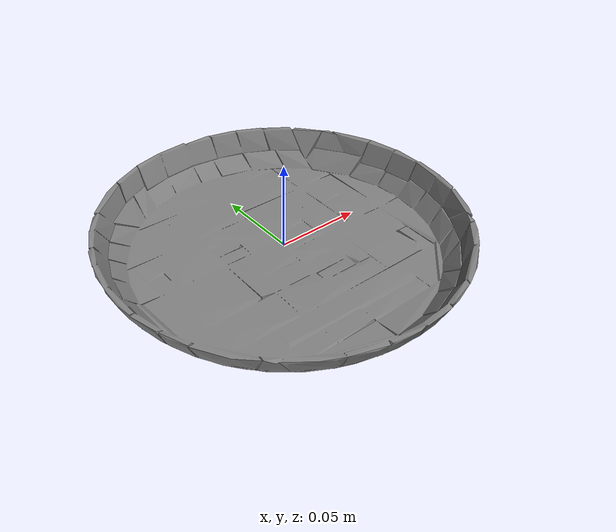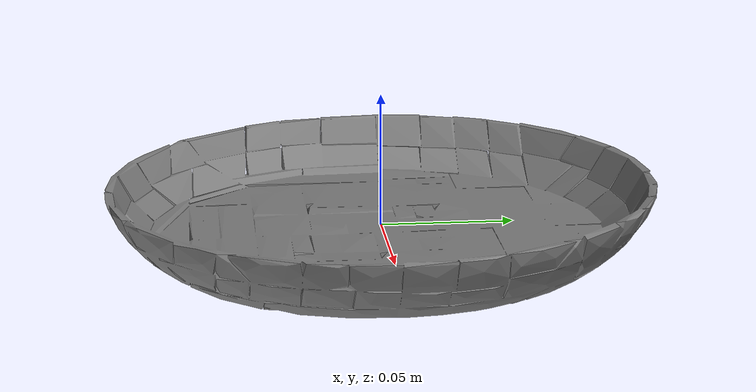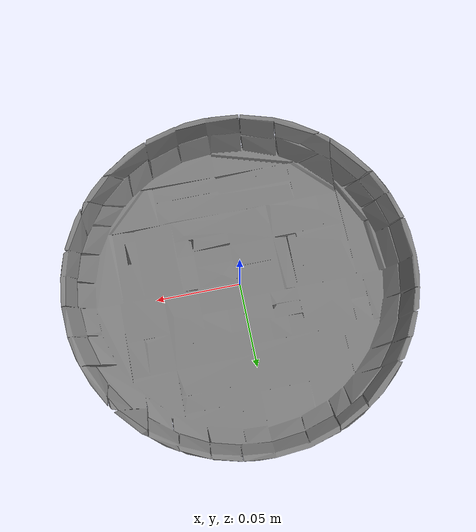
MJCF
<mujoco model="plate_Ecoforms_Plant_Container_S24NATURAL_M">
  <default>
    <default class="visual">
      <geom group="2" type="mesh" contype="0" conaffinity="0" />
    </default>
    <default class="collision">
      <geom group="3" type="mesh" />
    </default>
  </default>
  <asset>
    <mesh file="plate_Ecoforms_Plant_Container_S24NATURAL_M.stl" />
    <mesh file="plate_Ecoforms_Plant_Container_S24NATURAL_M_collision_0.stl" />
    <mesh file="plate_Ecoforms_Plant_Container_S24NATURAL_M_collision_1.stl" />
    <mesh file="plate_Ecoforms_Plant_Container_S24NATURAL_M_collision_2.stl" />
    <mesh file="plate_Ecoforms_Plant_Container_S24NATURAL_M_collision_3.stl" />
    <mesh file="plate_Ecoforms_Plant_Container_S24NATURAL_M_collision_4.stl" />
    <mesh file="plate_Ecoforms_Plant_Container_S24NATURAL_M_collision_5.stl" />
    <mesh file="plate_Ecoforms_Plant_Container_S24NATURAL_M_collision_6.stl" />
    <mesh file="plate_Ecoforms_Plant_Container_S24NATURAL_M_collision_7.stl" />
    <mesh file="plate_Ecoforms_Plant_Container_S24NATURAL_M_collision_8.stl" />
    <mesh file="plate_Ecoforms_Plant_Container_S24NATURAL_M_collision_9.stl" />
    <mesh file="plate_Ecoforms_Plant_Container_S24NATURAL_M_collision_10.stl" />
    <mesh file="plate_Ecoforms_Plant_Container_S24NATURAL_M_collision_11.stl" />
    <mesh file="plate_Ecoforms_Plant_Container_S24NATURAL_M_collision_12.stl" />
    <mesh file="plate_Ecoforms_Plant_Container_S24NATURAL_M_collision_13.stl" />
    <mesh file="plate_Ecoforms_Plant_Container_S24NATURAL_M_collision_14.stl" />
    <mesh file="plate_Ecoforms_Plant_Container_S24NATURAL_M_collision_15.stl" />
  </asset>
  <worldbody>
    <body name="plate_Ecoforms_Plant_Container_S24NATURAL_M">
      <geom mesh="plate_Ecoforms_Plant_Container_S24NATURAL_M" class="visual" />
      <geom mesh="plate_Ecoforms_Plant_Container_S24NATURAL_M_collision_0" class="collision" />
      <geom mesh="plate_Ecoforms_Plant_Container_S24NATURAL_M_collision_1" class="collision" />
      <geom mesh="plate_Ecoforms_Plant_Container_S24NATURAL_M_collision_2" class="collision" />
      <geom mesh="plate_Ecoforms_Plant_Container_S24NATURAL_M_collision_3" class="collision" />
      <geom mesh="plate_Ecoforms_Plant_Container_S24NATURAL_M_collision_4" class="collision" />
      <geom mesh="plate_Ecoforms_Plant_Container_S24NATURAL_M_collision_5" class="collision" />
      <geom mesh="plate_Ecoforms_Plant_Container_S24NATURAL_M_collision_6" class="collision" />
      <geom mesh="plate_Ecoforms_Plant_Container_S24NATURAL_M_collision_7" class="collision" />
      <geom mesh="plate_Ecoforms_Plant_Container_S24NATURAL_M_collision_8" class="collision" />
      <geom mesh="plate_Ecoforms_Plant_Container_S24NATURAL_M_collision_9" class="collision" />
      <geom mesh="plate_Ecoforms_Plant_Container_S24NATURAL_M_collision_10" class="collision" />
      <geom mesh="plate_Ecoforms_Plant_Container_S24NATURAL_M_collision_11" class="collision" />
      <geom mesh="plate_Ecoforms_Plant_Container_S24NATURAL_M_collision_12" class="collision" />
      <geom mesh="plate_Ecoforms_Plant_Container_S24NATURAL_M_collision_13" class="collision" />
      <geom mesh="plate_Ecoforms_Plant_Container_S24NATURAL_M_collision_14" class="collision" />
      <geom mesh="plate_Ecoforms_Plant_Container_S24NATURAL_M_collision_15" class="collision" />
    </body>
  </worldbody>
</mujoco>
